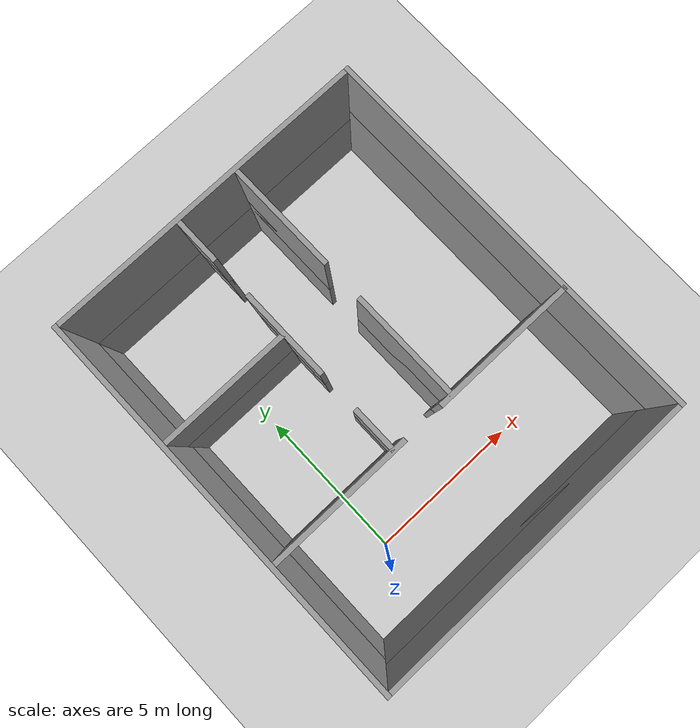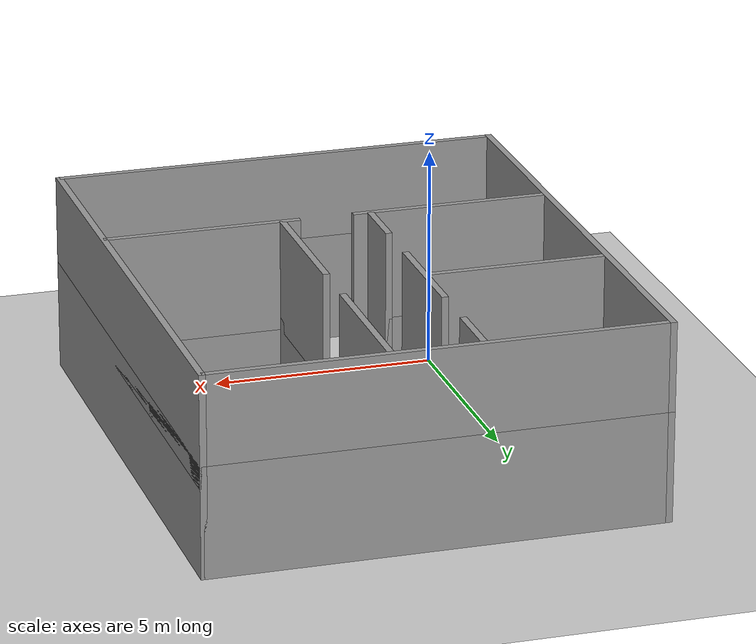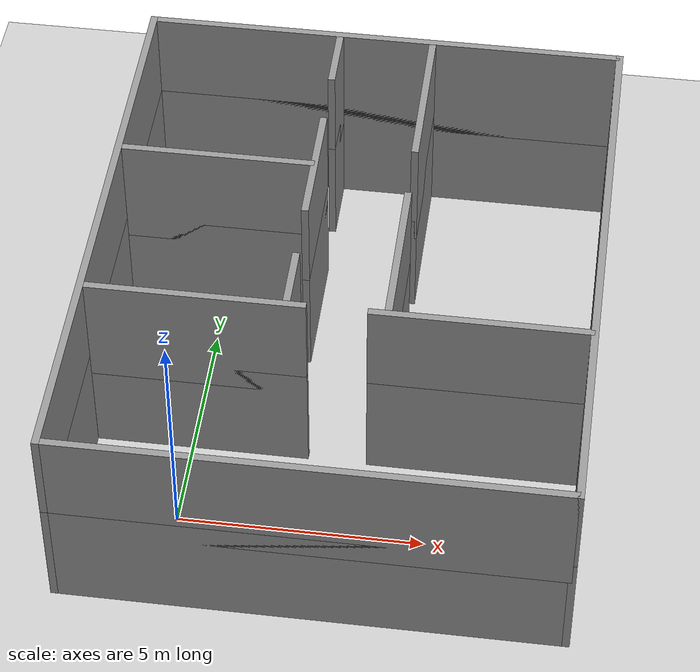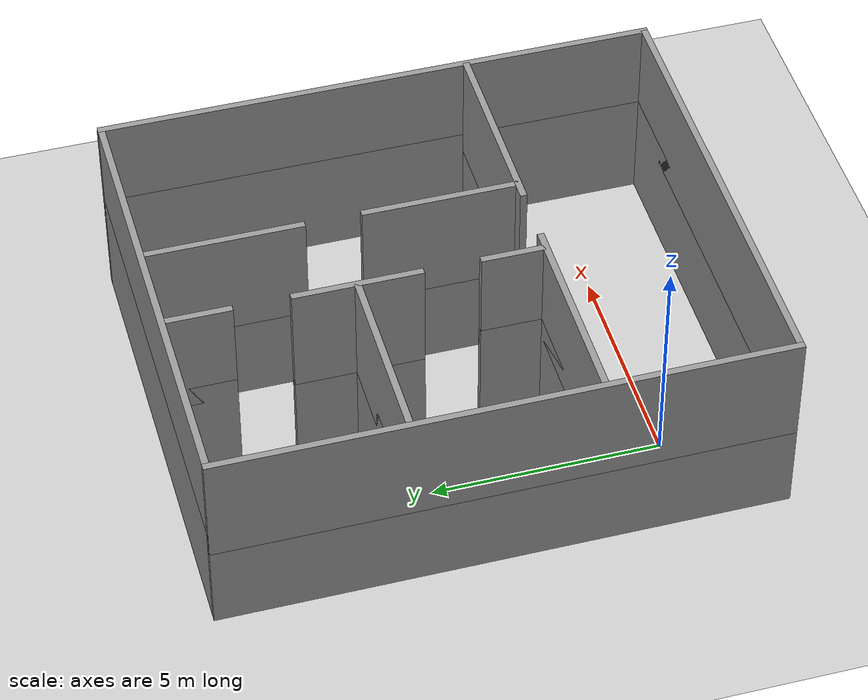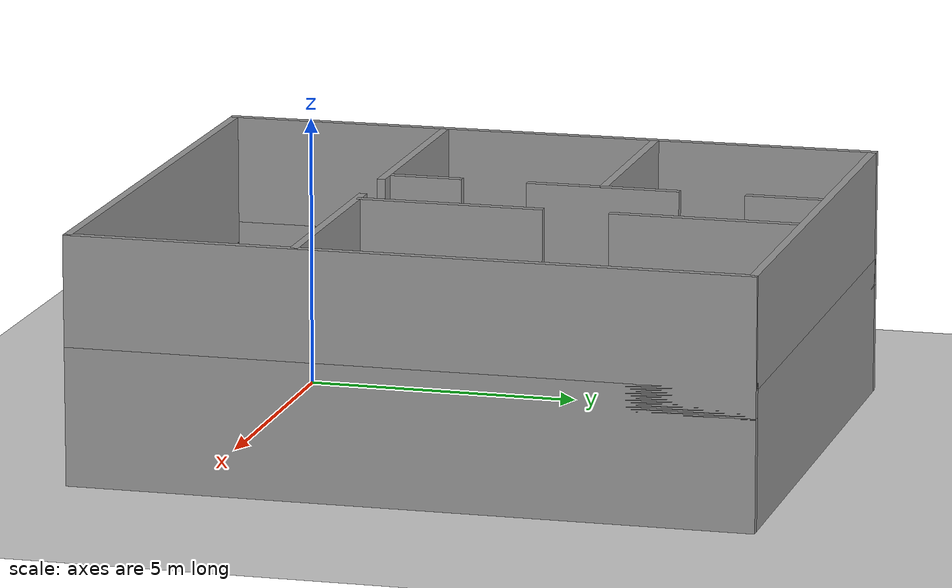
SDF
<sdf version="1.6">
 <world name="default">
  <light name="sun" type="directional">
   <pose>0 0 10 0 -0 0</pose>
   <diffuse>0.8 0.8 0.8 1</diffuse>
   <specular>0.2 0.2 0.2 1</specular>
   <attenuation>
    <range>1000</range>
    <constant>0.9</constant>
    <linear>0.01</linear>
    <quadratic>0.001</quadratic>
   </attenuation>
   <direction>-0.5 0.1 -0.9</direction>
  </light>
  <model name="ground_plane">
   <static>1</static>
   <link name="link">
    <collision name="collision">
     <geometry><plane><normal>0 0 1</normal><size>100 100</size></plane></geometry>
     <surface>
      <contact><collide_bitmask>65535</collide_bitmask></contact>
      <friction><ode><mu>100</mu><mu2>50</mu2></ode></friction>
     </surface>
    </collision>
    <visual name="visual">
     <cast_shadows>0</cast_shadows>
     <geometry><plane><normal>0 0 1</normal><size>100 100</size></plane></geometry>
     <material>
      <script><uri>file://media/materials/scripts/gazebo.material</uri><name>Gazebo/Grey</name></script>
     </material>
    </visual>
   </link>
  </model>
  <gravity>0 0 -9.8</gravity>
  <magnetic_field>6e-06 2.3e-05 -4.2e-05</magnetic_field>
  <atmosphere type="adiabatic"/>
  <physics name="default_physics" default="0" type="ode">
   <max_step_size>0.001</max_step_size>
   <real_time_factor>1</real_time_factor>
   <real_time_update_rate>1000</real_time_update_rate>
  </physics>
  <scene><ambient>0.4 0.4 0.4 1</ambient><background>0.7 0.7 0.7 1</background><shadows>1</shadows></scene>
  <spherical_coordinates>
   <surface_model>EARTH_WGS84</surface_model>
   <latitude_deg>0</latitude_deg>
   <longitude_deg>0</longitude_deg>
   <elevation>0</elevation>
   <heading_deg>0</heading_deg>
  </spherical_coordinates>
  <physics name="default_physics" default="0" type="ode">
   <ode>
    <solver>
     <type>quick</type>
     <iters>20</iters>
     <sor>1.3</sor>
     <use_dynamic_moi_rescaling>0</use_dynamic_moi_rescaling>
    </solver>
    <constraints>
     <cfm>0</cfm>
     <erp>0.2</erp>
     <contact_max_correcting_vel>100</contact_max_correcting_vel>
     <contact_surface_layer>0.001</contact_surface_layer>
    </constraints>
   </ode>
   <max_step_size>0.002</max_step_size>
   <real_time_factor>1</real_time_factor>
   <real_time_update_rate>500</real_time_update_rate>
  </physics>
  <audio><device>default</device></audio>
  <model name="office">
   <pose>3 4 0 0 -0 0</pose>
   <link name="Wall_0">
    <collision name="Wall_0_Collision">
     <geometry><box><size>10 0.15 2.5</size></box></geometry>
     <pose>0 0 1.25 0 -0 0</pose>
    </collision>
    <visual name="Wall_0_Visual">
     <pose>0 0 1.25 0 -0 0</pose>
     <geometry><box><size>10 0.15 2.5</size></box></geometry>
     <material>
      <script><uri>file://media/materials/scripts/gazebo.material</uri><name>Gazebo/Grey</name></script>
      <ambient>1 1 1 1</ambient>
     </material>
     <meta><layer>0</layer></meta>
    </visual>
    <pose>0 -6.075 0 0 -0 0</pose>
   </link>
   <link name="Wall_1">
    <collision name="Wall_1_Collision">
     <geometry><box><size>0.15 12.3 2.5</size></box></geometry>
     <pose>0 0 1.25 0 -0 0</pose>
    </collision>
    <visual name="Wall_1_Visual">
     <pose>0 0 1.25 0 -0 0</pose>
     <geometry><box><size>0.15 12.3 2.5</size></box></geometry>
     <material>
      <script><uri>file://media/materials/scripts/gazebo.material</uri><name>Gazebo/Grey</name></script>
      <ambient>1 1 1 1</ambient>
     </material>
     <meta><layer>0</layer></meta>
    </visual>
    <pose>5 0 0 0 -0 0</pose>
   </link>
   <link name="Wall_2">
    <collision name="Wall_2_Collision">
     <geometry><box><size>10 0.15 2.5</size></box></geometry>
     <pose>0 0 1.25 0 -0 0</pose>
    </collision>
    <visual name="Wall_2_Visual">
     <pose>0 0 1.25 0 -0 0</pose>
     <geometry><box><size>10 0.15 2.5</size></box></geometry>
     <material>
      <script><uri>file://media/materials/scripts/gazebo.material</uri><name>Gazebo/Grey</name></script>
      <ambient>1 1 1 1</ambient>
     </material>
     <meta><layer>0</layer></meta>
    </visual>
    <pose>0 6.075 0 0 -0 0</pose>
   </link>
   <link name="Wall_3">
    <collision name="Wall_3_Collision">
     <geometry><box><size>0.15 12 2.5</size></box></geometry>
     <pose>0 0 1.25 0 -0 0</pose>
    </collision>
    <visual name="Wall_3_Visual">
     <pose>0 0 1.25 0 -0 0</pose>
     <geometry><box><size>0.15 12.3 2.5</size></box></geometry>
     <material>
      <script><uri>file://media/materials/scripts/gazebo.material</uri><name>Gazebo/Grey</name></script>
      <ambient>1 1 1 1</ambient>
     </material>
     <meta><layer>0</layer></meta>
    </visual>
    <pose>-5.075 0 0 0 -0 0</pose>
   </link>
   <link name="Wall_4">
    <collision name="Wall_4_Collision">
     <geometry><box><size>0.15 1.4 2.5</size></box></geometry>
     <pose>0 0 1.25 0 -0 0</pose>
    </collision>
    <visual name="Wall_4_Visual">
     <pose>0 0 1.25 0 -0 0</pose>
     <geometry><box><size>0.15 1.4 2.5</size></box></geometry>
     <material>
      <script><uri>file://media/materials/scripts/gazebo.material</uri><name>Gazebo/Grey</name></script>
      <ambient>1 1 1 1</ambient>
     </material>
     <meta><layer>0</layer></meta>
    </visual>
    <pose>-1 5.3 0 0 -0 0</pose>
   </link>
   <link name="Wall_5">
    <collision name="Wall_5_Collision">
     <geometry><box><size>0.15 2.8 2.5</size></box></geometry>
     <pose>0 0 1.25 0 -0 0</pose>
    </collision>
    <visual name="Wall_5_Visual">
     <pose>0 0 1.25 0 -0 0</pose>
     <geometry><box><size>0.15 2.8 2.5</size></box></geometry>
     <material>
      <script><uri>file://media/materials/scripts/gazebo.material</uri><name>Gazebo/Grey</name></script>
      <ambient>1 1 1 1</ambient>
     </material>
     <meta><layer>0</layer></meta>
    </visual>
    <pose>-1 2 0 0 -0 0</pose>
   </link>
   <link name="Wall_6">
    <collision name="Wall_6_Collision">
     <geometry><box><size>0.15 1.4 2.5</size></box></geometry>
     <pose>0 0 1.25 0 -0 0</pose>
    </collision>
    <visual name="Wall_6_Visual">
     <pose>0 0 1.25 0 -0 0</pose>
     <geometry><box><size>0.15 1.4 2.5</size></box></geometry>
     <material>
      <script><uri>file://media/materials/scripts/gazebo.material</uri><name>Gazebo/Grey</name></script>
      <ambient>1 1 1 1</ambient>
     </material>
     <meta><layer>0</layer></meta>
    </visual>
    <pose>-1 -1.3 0 0 -0 0</pose>
   </link>
   <link name="Wall_7">
    <collision name="Wall_7_Collision">
     <geometry><box><size>0.15 3.4 2.5</size></box></geometry>
     <pose>0 0 1.25 0 -0 0</pose>
    </collision>
    <visual name="Wall_7_Visual">
     <pose>0 0 1.25 0 -0 0</pose>
     <geometry><box><size>0.15 3.4 2.5</size></box></geometry>
     <material>
      <script><uri>file://media/materials/scripts/gazebo.material</uri><name>Gazebo/Grey</name></script>
      <ambient>1 1 1 1</ambient>
     </material>
     <meta><layer>0</layer></meta>
    </visual>
    <pose>1 4.3 0 0 -0 0</pose>
   </link>
   <link name="Wall_8">
    <collision name="Wall_8_Collision">
     <geometry><box><size>0.15 3.4 2.5</size></box></geometry>
     <pose>0 0 1.25 0 -0 0</pose>
    </collision>
    <visual name="Wall_8_Visual">
     <pose>0 0 1.25 0 -0 0</pose>
     <geometry><box><size>0.15 3.4 2.5</size></box></geometry>
     <material>
      <script><uri>file://media/materials/scripts/gazebo.material</uri><name>Gazebo/Grey</name></script>
      <ambient>1 1 1 1</ambient>
     </material>
     <meta><layer>0</layer></meta>
    </visual>
    <pose>1 -0.3 0 0 -0 0</pose>
   </link>
   <link name="Wall_9">
    <collision name="Wall_9_Collision">
     <geometry><box><size>4 0.15 2.5</size></box></geometry>
     <pose>0 0 1.25 0 -0 0</pose>
    </collision>
    <visual name="Wall_9_Visual">
     <pose>0 0 1.25 0 -0 0</pose>
     <geometry><box><size>4 0.15 2.5</size></box></geometry>
     <material>
      <script><uri>file://media/materials/scripts/gazebo.material</uri><name>Gazebo/Grey</name></script>
      <ambient>1 1 1 1</ambient>
     </material>
     <meta><layer>0</layer></meta>
    </visual>
    <pose>-3 2 0 0 -0 0</pose>
   </link>
   <link name="Wall_10">
    <collision name="Wall_10_Collision">
     <geometry><box><size>4.4 0.15 2.5</size></box></geometry>
     <pose>0 0 1.25 0 -0 0</pose>
    </collision>
    <visual name="Wall_10_Visual">
     <pose>0 0 1.25 0 -0 0</pose>
     <geometry><box><size>4.4 0.15 2.5</size></box></geometry>
     <material>
      <script><uri>file://media/materials/scripts/gazebo.material</uri><name>Gazebo/Grey</name></script>
      <ambient>1 1 1 1</ambient>
     </material>
     <meta><layer>0</layer></meta>
    </visual>
    <pose>-2.8 -2 0 0 -0 0</pose>
   </link>
   <link name="Wall_11">
    <collision name="Wall_11_Collision">
     <geometry><box><size>4.4 0.15 2.5</size></box></geometry>
     <pose>0 0 1.25 0 -0 0</pose>
    </collision>
    <visual name="Wall_11_Visual">
     <pose>0 0 1.25 0 -0 0</pose>
     <geometry><box><size>4.4 0.15 2.5</size></box></geometry>
     <material>
      <script><uri>file://media/materials/scripts/gazebo.material</uri><name>Gazebo/Grey</name></script>
      <ambient>1 1 1 1</ambient>
     </material>
     <meta><layer>0</layer></meta>
    </visual>
    <pose>2.8 -2 0 0 -0 0</pose>
   </link>
   <static>1</static>
  </model>
  <model name="office_0">
   <pose>3 4 2 0 -0 0</pose>
   <link name="Wall_0">
    <collision name="Wall_0_Collision">
     <geometry><box><size>10 0.15 2.5</size></box></geometry>
     <pose>0 0 1.25 0 -0 0</pose>
    </collision>
    <visual name="Wall_0_Visual">
     <pose>0 0 1.25 0 -0 0</pose>
     <geometry><box><size>10 0.15 2.5</size></box></geometry>
     <material>
      <script><uri>file://media/materials/scripts/gazebo.material</uri><name>Gazebo/Grey</name></script>
      <ambient>1 1 1 1</ambient>
     </material>
     <meta><layer>0</layer></meta>
    </visual>
    <pose>0 -6.075 0 0 -0 0</pose>
   </link>
   <link name="Wall_1">
    <collision name="Wall_1_Collision">
     <geometry><box><size>0.15 12.3 2.5</size></box></geometry>
     <pose>0 0 1.25 0 -0 0</pose>
    </collision>
    <visual name="Wall_1_Visual">
     <pose>0 0 1.25 0 -0 0</pose>
     <geometry><box><size>0.15 12.3 2.5</size></box></geometry>
     <material>
      <script><uri>file://media/materials/scripts/gazebo.material</uri><name>Gazebo/Grey</name></script>
      <ambient>1 1 1 1</ambient>
     </material>
     <meta><layer>0</layer></meta>
    </visual>
    <pose>5 0 0 0 -0 0</pose>
   </link>
   <link name="Wall_2">
    <collision name="Wall_2_Collision">
     <geometry><box><size>10 0.15 2.5</size></box></geometry>
     <pose>0 0 1.25 0 -0 0</pose>
    </collision>
    <visual name="Wall_2_Visual">
     <pose>0 0 1.25 0 -0 0</pose>
     <geometry><box><size>10 0.15 2.5</size></box></geometry>
     <material>
      <script><uri>file://media/materials/scripts/gazebo.material</uri><name>Gazebo/Grey</name></script>
      <ambient>1 1 1 1</ambient>
     </material>
     <meta><layer>0</layer></meta>
    </visual>
    <pose>0 6.075 0 0 -0 0</pose>
   </link>
   <link name="Wall_3">
    <collision name="Wall_3_Collision">
     <geometry><box><size>0.15 12 2.5</size></box></geometry>
     <pose>0 0 1.25 0 -0 0</pose>
    </collision>
    <visual name="Wall_3_Visual">
     <pose>0 0 1.25 0 -0 0</pose>
     <geometry><box><size>0.15 12.3 2.5</size></box></geometry>
     <material>
      <script><uri>file://media/materials/scripts/gazebo.material</uri><name>Gazebo/Grey</name></script>
      <ambient>1 1 1 1</ambient>
     </material>
     <meta><layer>0</layer></meta>
    </visual>
    <pose>-5.075 0 0 0 -0 0</pose>
   </link>
   <link name="Wall_4">
    <collision name="Wall_4_Collision">
     <geometry><box><size>0.15 1.4 2.5</size></box></geometry>
     <pose>0 0 1.25 0 -0 0</pose>
    </collision>
    <visual name="Wall_4_Visual">
     <pose>0 0 1.25 0 -0 0</pose>
     <geometry><box><size>0.15 1.4 2.5</size></box></geometry>
     <material>
      <script><uri>file://media/materials/scripts/gazebo.material</uri><name>Gazebo/Grey</name></script>
      <ambient>1 1 1 1</ambient>
     </material>
     <meta><layer>0</layer></meta>
    </visual>
    <pose>-1 5.3 0 0 -0 0</pose>
   </link>
   <link name="Wall_5">
    <collision name="Wall_5_Collision">
     <geometry><box><size>0.15 2.8 2.5</size></box></geometry>
     <pose>0 0 1.25 0 -0 0</pose>
    </collision>
    <visual name="Wall_5_Visual">
     <pose>0 0 1.25 0 -0 0</pose>
     <geometry><box><size>0.15 2.8 2.5</size></box></geometry>
     <material>
      <script><uri>file://media/materials/scripts/gazebo.material</uri><name>Gazebo/Grey</name></script>
      <ambient>1 1 1 1</ambient>
     </material>
     <meta><layer>0</layer></meta>
    </visual>
    <pose>-1 2 0 0 -0 0</pose>
   </link>
   <link name="Wall_6">
    <collision name="Wall_6_Collision">
     <geometry><box><size>0.15 1.4 2.5</size></box></geometry>
     <pose>0 0 1.25 0 -0 0</pose>
    </collision>
    <visual name="Wall_6_Visual">
     <pose>0 0 1.25 0 -0 0</pose>
     <geometry><box><size>0.15 1.4 2.5</size></box></geometry>
     <material>
      <script><uri>file://media/materials/scripts/gazebo.material</uri><name>Gazebo/Grey</name></script>
      <ambient>1 1 1 1</ambient>
     </material>
     <meta><layer>0</layer></meta>
    </visual>
    <pose>-1 -1.3 0 0 -0 0</pose>
   </link>
   <link name="Wall_7">
    <collision name="Wall_7_Collision">
     <geometry><box><size>0.15 3.4 2.5</size></box></geometry>
     <pose>0 0 1.25 0 -0 0</pose>
    </collision>
    <visual name="Wall_7_Visual">
     <pose>0 0 1.25 0 -0 0</pose>
     <geometry><box><size>0.15 3.4 2.5</size></box></geometry>
     <material>
      <script><uri>file://media/materials/scripts/gazebo.material</uri><name>Gazebo/Grey</name></script>
      <ambient>1 1 1 1</ambient>
     </material>
     <meta><layer>0</layer></meta>
    </visual>
    <pose>1 4.3 0 0 -0 0</pose>
   </link>
   <link name="Wall_8">
    <collision name="Wall_8_Collision">
     <geometry><box><size>0.15 3.4 2.5</size></box></geometry>
     <pose>0 0 1.25 0 -0 0</pose>
    </collision>
    <visual name="Wall_8_Visual">
     <pose>0 0 1.25 0 -0 0</pose>
     <geometry><box><size>0.15 3.4 2.5</size></box></geometry>
     <material>
      <script><uri>file://media/materials/scripts/gazebo.material</uri><name>Gazebo/Grey</name></script>
      <ambient>1 1 1 1</ambient>
     </material>
     <meta><layer>0</layer></meta>
    </visual>
    <pose>1 -0.3 0 0 -0 0</pose>
   </link>
   <link name="Wall_9">
    <collision name="Wall_9_Collision">
     <geometry><box><size>4 0.15 2.5</size></box></geometry>
     <pose>0 0 1.25 0 -0 0</pose>
    </collision>
    <visual name="Wall_9_Visual">
     <pose>0 0 1.25 0 -0 0</pose>
     <geometry><box><size>4 0.15 2.5</size></box></geometry>
     <material>
      <script><uri>file://media/materials/scripts/gazebo.material</uri><name>Gazebo/Grey</name></script>
      <ambient>1 1 1 1</ambient>
     </material>
     <meta><layer>0</layer></meta>
    </visual>
    <pose>-3 2 0 0 -0 0</pose>
   </link>
   <link name="Wall_10">
    <collision name="Wall_10_Collision">
     <geometry><box><size>4.4 0.15 2.5</size></box></geometry>
     <pose>0 0 1.25 0 -0 0</pose>
    </collision>
    <visual name="Wall_10_Visual">
     <pose>0 0 1.25 0 -0 0</pose>
     <geometry><box><size>4.4 0.15 2.5</size></box></geometry>
     <material>
      <script><uri>file://media/materials/scripts/gazebo.material</uri><name>Gazebo/Grey</name></script>
      <ambient>1 1 1 1</ambient>
     </material>
     <meta><layer>0</layer></meta>
    </visual>
    <pose>-2.8 -2 0 0 -0 0</pose>
   </link>
   <link name="Wall_11">
    <collision name="Wall_11_Collision">
     <geometry><box><size>4.4 0.15 2.5</size></box></geometry>
     <pose>0 0 1.25 0 -0 0</pose>
    </collision>
    <visual name="Wall_11_Visual">
     <pose>0 0 1.25 0 -0 0</pose>
     <geometry><box><size>4.4 0.15 2.5</size></box></geometry>
     <material>
      <script><uri>file://media/materials/scripts/gazebo.material</uri><name>Gazebo/Grey</name></script>
      <ambient>1 1 1 1</ambient>
     </material>
     <meta><layer>0</layer></meta>
    </visual>
    <pose>2.8 -2 0 0 -0 0</pose>
   </link>
   <static>1</static>
  </model>
 </world>
</sdf>
